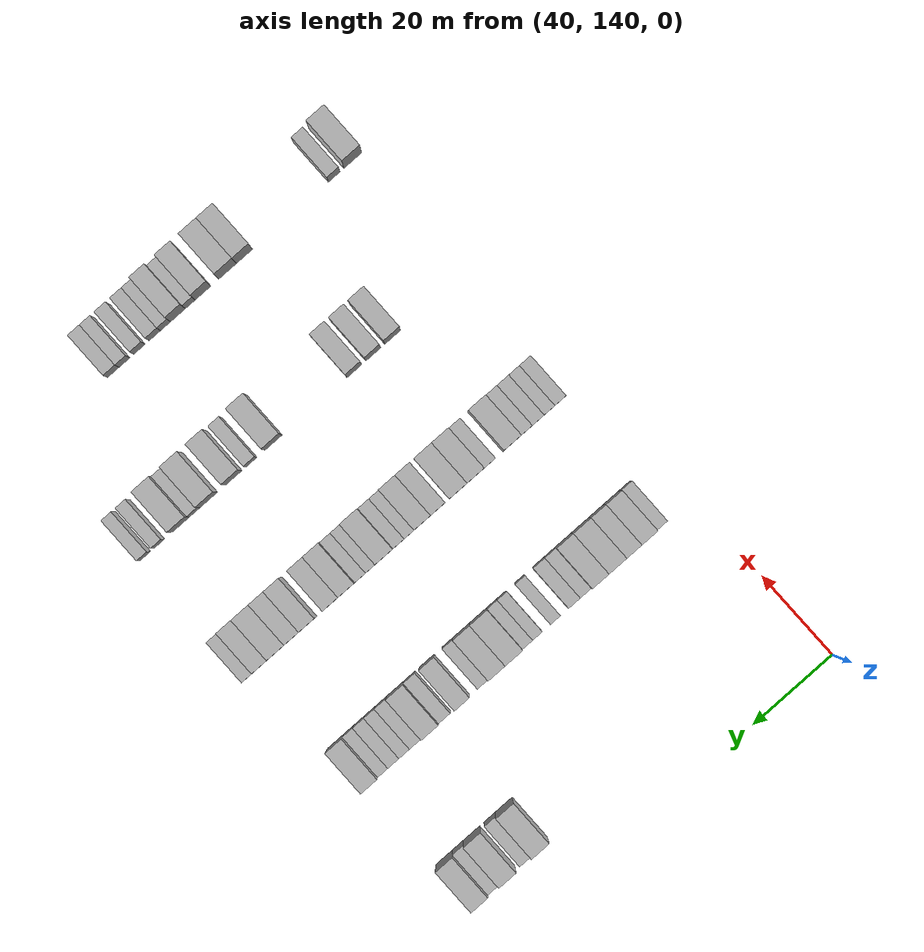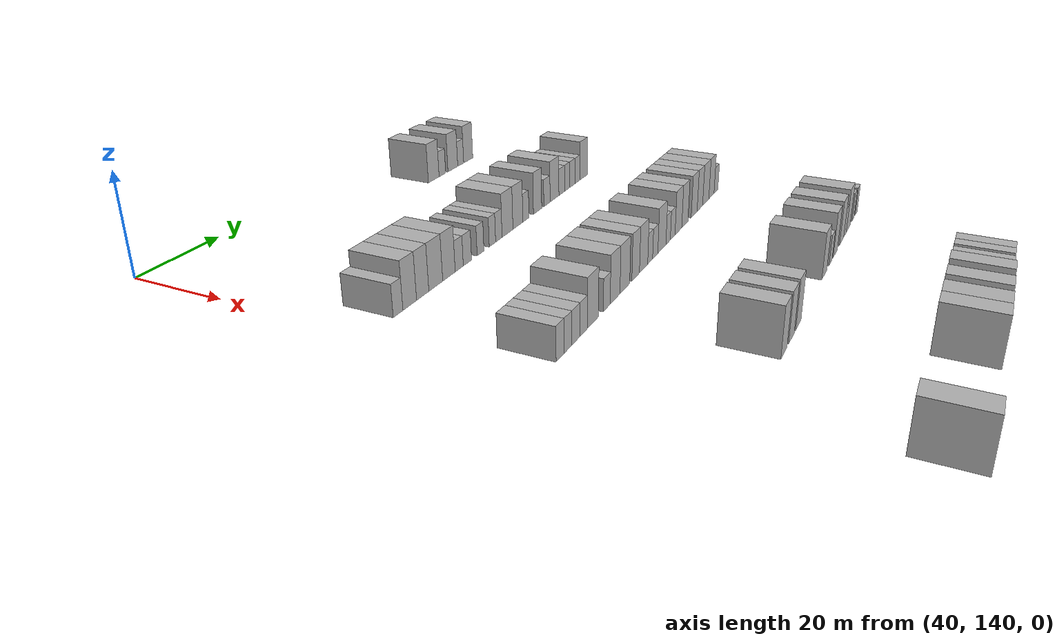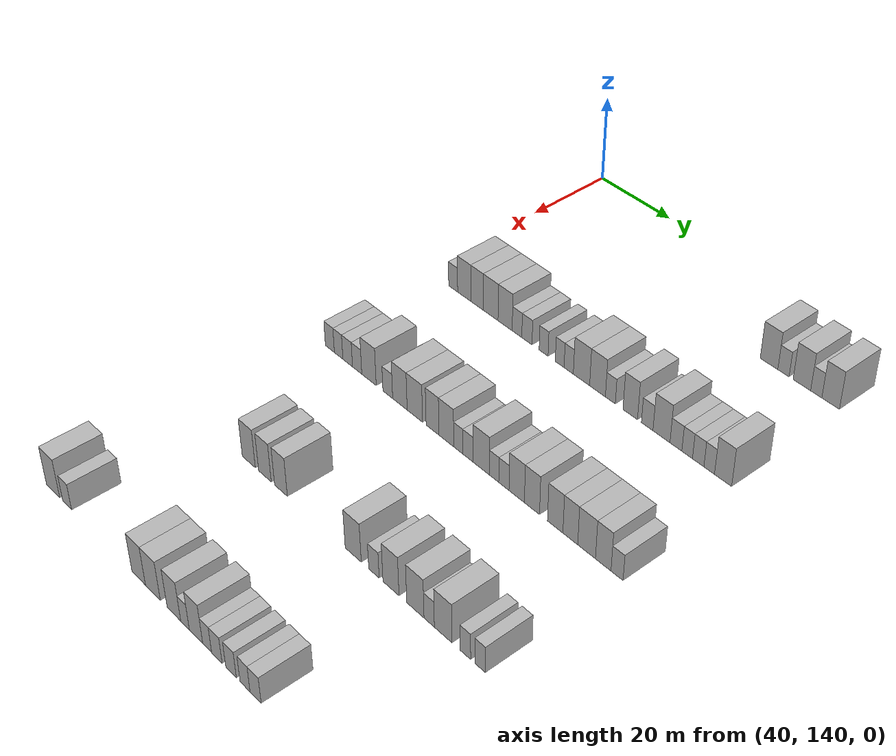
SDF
<sdf version="1.6">
 <world name="default">
  <model name="building_392">
   <static>1</static>
   <pose>55.0000 205.2667 0 0.000000 0.000000 0.000000</pose>
   <link name="link">
    <pose>0 0 4.50 0 0 0</pose>
    <collision name="collision"><geometry><box><size>10.0000 4.4121 9.0000</size></box></geometry></collision>
    <visual name="visual">
     <cast_shadows>0</cast_shadows>
     <geometry><box><size>10.0000 4.4121 9.0000</size></box></geometry>
     <material>
      <script>
       <uri>model://HANNAS_wall/materials/scripts</uri>
       <uri>model://HANNAS_wall/materials/textures</uri>
       <name>vrc/HANNAS_wall</name>
      </script>
     </material>
    </visual>
   </link>
  </model>
  <model name="building_393">
   <static>1</static>
   <pose>55.0000 208.8619 0 0.000000 0.000000 0.000000</pose>
   <link name="link">
    <pose>0 0 3.00 0 0 0</pose>
    <collision name="collision"><geometry><box><size>10.0000 2.7782 6.0000</size></box></geometry></collision>
    <visual name="visual">
     <cast_shadows>0</cast_shadows>
     <geometry><box><size>10.0000 2.7782 6.0000</size></box></geometry>
     <material>
      <script>
       <uri>model://HANNAS_wall/materials/scripts</uri>
       <uri>model://HANNAS_wall/materials/textures</uri>
       <name>vrc/HANNAS_wall</name>
      </script>
     </material>
    </visual>
   </link>
  </model>
  <model name="building_394">
   <static>1</static>
   <pose>55.0000 213.3897 0 0.000000 0.000000 0.000000</pose>
   <link name="link">
    <pose>0 0 4.50 0 0 0</pose>
    <collision name="collision"><geometry><box><size>10.0000 4.2774 9.0000</size></box></geometry></collision>
    <visual name="visual">
     <cast_shadows>0</cast_shadows>
     <geometry><box><size>10.0000 4.2774 9.0000</size></box></geometry>
     <material>
      <script>
       <uri>model://HANNAS_wall/materials/scripts</uri>
       <uri>model://HANNAS_wall/materials/textures</uri>
       <name>vrc/HANNAS_wall</name>
      </script>
     </material>
    </visual>
   </link>
  </model>
  <model name="building_395">
   <static>1</static>
   <pose>55.0000 216.8730 0 0.000000 0.000000 0.000000</pose>
   <link name="link">
    <pose>0 0 3.00 0 0 0</pose>
    <collision name="collision"><geometry><box><size>10.0000 2.6892 6.0000</size></box></geometry></collision>
    <visual name="visual">
     <cast_shadows>0</cast_shadows>
     <geometry><box><size>10.0000 2.6892 6.0000</size></box></geometry>
     <material>
      <script>
       <uri>model://HANNAS_wall/materials/scripts</uri>
       <uri>model://HANNAS_wall/materials/textures</uri>
       <name>vrc/HANNAS_wall</name>
      </script>
     </material>
    </visual>
   </link>
  </model>
  <model name="building_396">
   <static>1</static>
   <pose>55.0000 220.3134 0 0.000000 0.000000 0.000000</pose>
   <link name="link">
    <pose>0 0 4.50 0 0 0</pose>
    <collision name="collision"><geometry><box><size>10.0000 4.1917 9.0000</size></box></geometry></collision>
    <visual name="visual">
     <cast_shadows>0</cast_shadows>
     <geometry><box><size>10.0000 4.1917 9.0000</size></box></geometry>
     <material>
      <script>
       <uri>model://HANNAS_wall/materials/scripts</uri>
       <uri>model://HANNAS_wall/materials/textures</uri>
       <name>vrc/HANNAS_wall</name>
      </script>
     </material>
    </visual>
   </link>
  </model>
  <model name="building_612">
   <static>1</static>
   <pose>85.0000 148.2744 0 0.000000 0.000000 0.000000</pose>
   <link name="link">
    <pose>0 0 3.00 0 0 0</pose>
    <collision name="collision"><geometry><box><size>10.0000 2.7299 6.0000</size></box></geometry></collision>
    <visual name="visual">
     <cast_shadows>0</cast_shadows>
     <geometry><box><size>10.0000 2.7299 6.0000</size></box></geometry>
     <material>
      <script>
       <uri>model://HANNAS_wall/materials/scripts</uri>
       <uri>model://HANNAS_wall/materials/textures</uri>
       <name>vrc/HANNAS_wall</name>
      </script>
     </material>
    </visual>
   </link>
  </model>
  <model name="building_613">
   <static>1</static>
   <pose>85.0000 151.6302 0 0.000000 0.000000 0.000000</pose>
   <link name="link">
    <pose>0 0 4.50 0 0 0</pose>
    <collision name="collision"><geometry><box><size>10.0000 3.9817 9.0000</size></box></geometry></collision>
    <visual name="visual">
     <cast_shadows>0</cast_shadows>
     <geometry><box><size>10.0000 3.9817 9.0000</size></box></geometry>
     <material>
      <script>
       <uri>model://HANNAS_wall/materials/scripts</uri>
       <uri>model://HANNAS_wall/materials/textures</uri>
       <name>vrc/HANNAS_wall</name>
      </script>
     </material>
    </visual>
   </link>
  </model>
  <model name="building_614">
   <static>1</static>
   <pose>85.0000 155.4767 0 0.000000 0.000000 0.000000</pose>
   <link name="link">
    <pose>0 0 4.50 0 0 0</pose>
    <collision name="collision"><geometry><box><size>10.0000 3.7112 9.0000</size></box></geometry></collision>
    <visual name="visual">
     <cast_shadows>0</cast_shadows>
     <geometry><box><size>10.0000 3.7112 9.0000</size></box></geometry>
     <material>
      <script>
       <uri>model://HANNAS_wall/materials/scripts</uri>
       <uri>model://HANNAS_wall/materials/textures</uri>
       <name>vrc/HANNAS_wall</name>
      </script>
     </material>
    </visual>
   </link>
  </model>
  <model name="building_615">
   <static>1</static>
   <pose>85.0000 159.5320 0 0.000000 0.000000 0.000000</pose>
   <link name="link">
    <pose>0 0 4.50 0 0 0</pose>
    <collision name="collision"><geometry><box><size>10.0000 4.3995 9.0000</size></box></geometry></collision>
    <visual name="visual">
     <cast_shadows>0</cast_shadows>
     <geometry><box><size>10.0000 4.3995 9.0000</size></box></geometry>
     <material>
      <script>
       <uri>model://HANNAS_wall/materials/scripts</uri>
       <uri>model://HANNAS_wall/materials/textures</uri>
       <name>vrc/HANNAS_wall</name>
      </script>
     </material>
    </visual>
   </link>
  </model>
  <model name="building_616">
   <static>1</static>
   <pose>85.0000 163.7960 0 0.000000 0.000000 0.000000</pose>
   <link name="link">
    <pose>0 0 4.50 0 0 0</pose>
    <collision name="collision"><geometry><box><size>10.0000 4.1285 9.0000</size></box></geometry></collision>
    <visual name="visual">
     <cast_shadows>0</cast_shadows>
     <geometry><box><size>10.0000 4.1285 9.0000</size></box></geometry>
     <material>
      <script>
       <uri>model://HANNAS_wall/materials/scripts</uri>
       <uri>model://HANNAS_wall/materials/textures</uri>
       <name>vrc/HANNAS_wall</name>
      </script>
     </material>
    </visual>
   </link>
  </model>
  <model name="building_617">
   <static>1</static>
   <pose>85.0000 167.2426 0 0.000000 0.000000 0.000000</pose>
   <link name="link">
    <pose>0 0 3.00 0 0 0</pose>
    <collision name="collision"><geometry><box><size>10.0000 2.7646 6.0000</size></box></geometry></collision>
    <visual name="visual">
     <cast_shadows>0</cast_shadows>
     <geometry><box><size>10.0000 2.7646 6.0000</size></box></geometry>
     <material>
      <script>
       <uri>model://HANNAS_wall/materials/scripts</uri>
       <uri>model://HANNAS_wall/materials/textures</uri>
       <name>vrc/HANNAS_wall</name>
      </script>
     </material>
    </visual>
   </link>
  </model>
  <model name="building_618">
   <static>1</static>
   <pose>85.0000 170.0803 0 0.000000 0.000000 0.000000</pose>
   <link name="link">
    <pose>0 0 3.00 0 0 0</pose>
    <collision name="collision"><geometry><box><size>10.0000 2.9108 6.0000</size></box></geometry></collision>
    <visual name="visual">
     <cast_shadows>0</cast_shadows>
     <geometry><box><size>10.0000 2.9108 6.0000</size></box></geometry>
     <material>
      <script>
       <uri>model://HANNAS_wall/materials/scripts</uri>
       <uri>model://HANNAS_wall/materials/textures</uri>
       <name>vrc/HANNAS_wall</name>
      </script>
     </material>
    </visual>
   </link>
  </model>
  <model name="building_619">
   <static>1</static>
   <pose>85.0000 174.7910 0 0.000000 0.000000 0.000000</pose>
   <link name="link">
    <pose>0 0 3.00 0 0 0</pose>
    <collision name="collision"><geometry><box><size>10.0000 2.5106 6.0000</size></box></geometry></collision>
    <visual name="visual">
     <cast_shadows>0</cast_shadows>
     <geometry><box><size>10.0000 2.5106 6.0000</size></box></geometry>
     <material>
      <script>
       <uri>model://HANNAS_wall/materials/scripts</uri>
       <uri>model://HANNAS_wall/materials/textures</uri>
       <name>vrc/HANNAS_wall</name>
      </script>
     </material>
    </visual>
   </link>
  </model>
  <model name="building_620">
   <static>1</static>
   <pose>85.0000 179.2622 0 0.000000 0.000000 0.000000</pose>
   <link name="link">
    <pose>0 0 3.00 0 0 0</pose>
    <collision name="collision"><geometry><box><size>10.0000 2.4319 6.0000</size></box></geometry></collision>
    <visual name="visual">
     <cast_shadows>0</cast_shadows>
     <geometry><box><size>10.0000 2.4319 6.0000</size></box></geometry>
     <material>
      <script>
       <uri>model://HANNAS_wall/materials/scripts</uri>
       <uri>model://HANNAS_wall/materials/textures</uri>
       <name>vrc/HANNAS_wall</name>
      </script>
     </material>
    </visual>
   </link>
  </model>
  <model name="building_621">
   <static>1</static>
   <pose>85.0000 181.7440 0 0.000000 0.000000 0.000000</pose>
   <link name="link">
    <pose>0 0 3.00 0 0 0</pose>
    <collision name="collision"><geometry><box><size>10.0000 2.5317 6.0000</size></box></geometry></collision>
    <visual name="visual">
     <cast_shadows>0</cast_shadows>
     <geometry><box><size>10.0000 2.5317 6.0000</size></box></geometry>
     <material>
      <script>
       <uri>model://HANNAS_wall/materials/scripts</uri>
       <uri>model://HANNAS_wall/materials/textures</uri>
       <name>vrc/HANNAS_wall</name>
      </script>
     </material>
    </visual>
   </link>
  </model>
  <model name="building_622">
   <static>1</static>
   <pose>85.0000 185.2139 0 0.000000 0.000000 0.000000</pose>
   <link name="link">
    <pose>0 0 4.50 0 0 0</pose>
    <collision name="collision"><geometry><box><size>10.0000 4.4080 9.0000</size></box></geometry></collision>
    <visual name="visual">
     <cast_shadows>0</cast_shadows>
     <geometry><box><size>10.0000 4.4080 9.0000</size></box></geometry>
     <material>
      <script>
       <uri>model://HANNAS_wall/materials/scripts</uri>
       <uri>model://HANNAS_wall/materials/textures</uri>
       <name>vrc/HANNAS_wall</name>
      </script>
     </material>
    </visual>
   </link>
  </model>
  <model name="building_623">
   <static>1</static>
   <pose>85.0000 189.5163 0 0.000000 0.000000 0.000000</pose>
   <link name="link">
    <pose>0 0 4.50 0 0 0</pose>
    <collision name="collision"><geometry><box><size>10.0000 4.1970 9.0000</size></box></geometry></collision>
    <visual name="visual">
     <cast_shadows>0</cast_shadows>
     <geometry><box><size>10.0000 4.1970 9.0000</size></box></geometry>
     <material>
      <script>
       <uri>model://HANNAS_wall/materials/scripts</uri>
       <uri>model://HANNAS_wall/materials/textures</uri>
       <name>vrc/HANNAS_wall</name>
      </script>
     </material>
    </visual>
   </link>
  </model>
  <model name="building_624">
   <static>1</static>
   <pose>85.0000 192.9185 0 0.000000 0.000000 0.000000</pose>
   <link name="link">
    <pose>0 0 3.00 0 0 0</pose>
    <collision name="collision"><geometry><box><size>10.0000 2.6074 6.0000</size></box></geometry></collision>
    <visual name="visual">
     <cast_shadows>0</cast_shadows>
     <geometry><box><size>10.0000 2.6074 6.0000</size></box></geometry>
     <material>
      <script>
       <uri>model://HANNAS_wall/materials/scripts</uri>
       <uri>model://HANNAS_wall/materials/textures</uri>
       <name>vrc/HANNAS_wall</name>
      </script>
     </material>
    </visual>
   </link>
  </model>
  <model name="building_625">
   <static>1</static>
   <pose>85.0000 198.0983 0 0.000000 0.000000 0.000000</pose>
   <link name="link">
    <pose>0 0 4.50 0 0 0</pose>
    <collision name="collision"><geometry><box><size>10.0000 3.7522 9.0000</size></box></geometry></collision>
    <visual name="visual">
     <cast_shadows>0</cast_shadows>
     <geometry><box><size>10.0000 3.7522 9.0000</size></box></geometry>
     <material>
      <script>
       <uri>model://HANNAS_wall/materials/scripts</uri>
       <uri>model://HANNAS_wall/materials/textures</uri>
       <name>vrc/HANNAS_wall</name>
      </script>
     </material>
    </visual>
   </link>
  </model>
  <model name="building_626">
   <static>1</static>
   <pose>85.0000 202.4432 0 0.000000 0.000000 0.000000</pose>
   <link name="link">
    <pose>0 0 3.00 0 0 0</pose>
    <collision name="collision"><geometry><box><size>10.0000 2.9375 6.0000</size></box></geometry></collision>
    <visual name="visual">
     <cast_shadows>0</cast_shadows>
     <geometry><box><size>10.0000 2.9375 6.0000</size></box></geometry>
     <material>
      <script>
       <uri>model://HANNAS_wall/materials/scripts</uri>
       <uri>model://HANNAS_wall/materials/textures</uri>
       <name>vrc/HANNAS_wall</name>
      </script>
     </material>
    </visual>
   </link>
  </model>
  <model name="building_627">
   <static>1</static>
   <pose>85.0000 206.0453 0 0.000000 0.000000 0.000000</pose>
   <link name="link">
    <pose>0 0 4.50 0 0 0</pose>
    <collision name="collision"><geometry><box><size>10.0000 4.2667 9.0000</size></box></geometry></collision>
    <visual name="visual">
     <cast_shadows>0</cast_shadows>
     <geometry><box><size>10.0000 4.2667 9.0000</size></box></geometry>
     <material>
      <script>
       <uri>model://HANNAS_wall/materials/scripts</uri>
       <uri>model://HANNAS_wall/materials/textures</uri>
       <name>vrc/HANNAS_wall</name>
      </script>
     </material>
    </visual>
   </link>
  </model>
  <model name="building_628">
   <static>1</static>
   <pose>85.0000 209.6467 0 0.000000 0.000000 0.000000</pose>
   <link name="link">
    <pose>0 0 3.00 0 0 0</pose>
    <collision name="collision"><geometry><box><size>10.0000 2.9363 6.0000</size></box></geometry></collision>
    <visual name="visual">
     <cast_shadows>0</cast_shadows>
     <geometry><box><size>10.0000 2.9363 6.0000</size></box></geometry>
     <material>
      <script>
       <uri>model://HANNAS_wall/materials/scripts</uri>
       <uri>model://HANNAS_wall/materials/textures</uri>
       <name>vrc/HANNAS_wall</name>
      </script>
     </material>
    </visual>
   </link>
  </model>
  <model name="building_629">
   <static>1</static>
   <pose>85.0000 212.4178 0 0.000000 0.000000 0.000000</pose>
   <link name="link">
    <pose>0 0 3.00 0 0 0</pose>
    <collision name="collision"><geometry><box><size>10.0000 2.6058 6.0000</size></box></geometry></collision>
    <visual name="visual">
     <cast_shadows>0</cast_shadows>
     <geometry><box><size>10.0000 2.6058 6.0000</size></box></geometry>
     <material>
      <script>
       <uri>model://HANNAS_wall/materials/scripts</uri>
       <uri>model://HANNAS_wall/materials/textures</uri>
       <name>vrc/HANNAS_wall</name>
      </script>
     </material>
    </visual>
   </link>
  </model>
  <model name="building_630">
   <static>1</static>
   <pose>85.0000 215.1076 0 0.000000 0.000000 0.000000</pose>
   <link name="link">
    <pose>0 0 3.00 0 0 0</pose>
    <collision name="collision"><geometry><box><size>10.0000 2.7737 6.0000</size></box></geometry></collision>
    <visual name="visual">
     <cast_shadows>0</cast_shadows>
     <geometry><box><size>10.0000 2.7737 6.0000</size></box></geometry>
     <material>
      <script>
       <uri>model://HANNAS_wall/materials/scripts</uri>
       <uri>model://HANNAS_wall/materials/textures</uri>
       <name>vrc/HANNAS_wall</name>
      </script>
     </material>
    </visual>
   </link>
  </model>
  <model name="building_631">
   <static>1</static>
   <pose>85.0000 217.7682 0 0.000000 0.000000 0.000000</pose>
   <link name="link">
    <pose>0 0 3.00 0 0 0</pose>
    <collision name="collision"><geometry><box><size>10.0000 2.5476 6.0000</size></box></geometry></collision>
    <visual name="visual">
     <cast_shadows>0</cast_shadows>
     <geometry><box><size>10.0000 2.5476 6.0000</size></box></geometry>
     <material>
      <script>
       <uri>model://HANNAS_wall/materials/scripts</uri>
       <uri>model://HANNAS_wall/materials/textures</uri>
       <name>vrc/HANNAS_wall</name>
      </script>
     </material>
    </visual>
   </link>
  </model>
  <model name="building_632">
   <static>1</static>
   <pose>85.0000 221.0757 0 0.000000 0.000000 0.000000</pose>
   <link name="link">
    <pose>0 0 4.50 0 0 0</pose>
    <collision name="collision"><geometry><box><size>10.0000 4.0674 9.0000</size></box></geometry></collision>
    <visual name="visual">
     <cast_shadows>0</cast_shadows>
     <geometry><box><size>10.0000 4.0674 9.0000</size></box></geometry>
     <material>
      <script>
       <uri>model://HANNAS_wall/materials/scripts</uri>
       <uri>model://HANNAS_wall/materials/textures</uri>
       <name>vrc/HANNAS_wall</name>
      </script>
     </material>
    </visual>
   </link>
  </model>
  <model name="building_844">
   <static>1</static>
   <pose>115.0000 146.9873 0 0.000000 0.000000 0.000000</pose>
   <link name="link">
    <pose>0 0 3.00 0 0 0</pose>
    <collision name="collision"><geometry><box><size>10.0000 2.8146 6.0000</size></box></geometry></collision>
    <visual name="visual">
     <cast_shadows>0</cast_shadows>
     <geometry><box><size>10.0000 2.8146 6.0000</size></box></geometry>
     <material>
      <script>
       <uri>model://HANNAS_wall/materials/scripts</uri>
       <uri>model://HANNAS_wall/materials/textures</uri>
       <name>vrc/HANNAS_wall</name>
      </script>
     </material>
    </visual>
   </link>
  </model>
  <model name="building_845">
   <static>1</static>
   <pose>115.0000 149.7172 0 0.000000 0.000000 0.000000</pose>
   <link name="link">
    <pose>0 0 3.00 0 0 0</pose>
    <collision name="collision"><geometry><box><size>10.0000 2.6453 6.0000</size></box></geometry></collision>
    <visual name="visual">
     <cast_shadows>0</cast_shadows>
     <geometry><box><size>10.0000 2.6453 6.0000</size></box></geometry>
     <material>
      <script>
       <uri>model://HANNAS_wall/materials/scripts</uri>
       <uri>model://HANNAS_wall/materials/textures</uri>
       <name>vrc/HANNAS_wall</name>
      </script>
     </material>
    </visual>
   </link>
  </model>
  <model name="building_846">
   <static>1</static>
   <pose>115.0000 152.5120 0 0.000000 0.000000 0.000000</pose>
   <link name="link">
    <pose>0 0 3.00 0 0 0</pose>
    <collision name="collision"><geometry><box><size>10.0000 2.9444 6.0000</size></box></geometry></collision>
    <visual name="visual">
     <cast_shadows>0</cast_shadows>
     <geometry><box><size>10.0000 2.9444 6.0000</size></box></geometry>
     <material>
      <script>
       <uri>model://HANNAS_wall/materials/scripts</uri>
       <uri>model://HANNAS_wall/materials/textures</uri>
       <name>vrc/HANNAS_wall</name>
      </script>
     </material>
    </visual>
   </link>
  </model>
  <model name="building_847">
   <static>1</static>
   <pose>115.0000 155.3981 0 0.000000 0.000000 0.000000</pose>
   <link name="link">
    <pose>0 0 3.00 0 0 0</pose>
    <collision name="collision"><geometry><box><size>10.0000 2.8277 6.0000</size></box></geometry></collision>
    <visual name="visual">
     <cast_shadows>0</cast_shadows>
     <geometry><box><size>10.0000 2.8277 6.0000</size></box></geometry>
     <material>
      <script>
       <uri>model://HANNAS_wall/materials/scripts</uri>
       <uri>model://HANNAS_wall/materials/textures</uri>
       <name>vrc/HANNAS_wall</name>
      </script>
     </material>
    </visual>
   </link>
  </model>
  <model name="building_848">
   <static>1</static>
   <pose>115.0000 158.9808 0 0.000000 0.000000 0.000000</pose>
   <link name="link">
    <pose>0 0 4.50 0 0 0</pose>
    <collision name="collision"><geometry><box><size>10.0000 4.3377 9.0000</size></box></geometry></collision>
    <visual name="visual">
     <cast_shadows>0</cast_shadows>
     <geometry><box><size>10.0000 4.3377 9.0000</size></box></geometry>
     <material>
      <script>
       <uri>model://HANNAS_wall/materials/scripts</uri>
       <uri>model://HANNAS_wall/materials/textures</uri>
       <name>vrc/HANNAS_wall</name>
      </script>
     </material>
    </visual>
   </link>
  </model>
  <model name="building_849">
   <static>1</static>
   <pose>115.0000 164.5821 0 0.000000 0.000000 0.000000</pose>
   <link name="link">
    <pose>0 0 3.00 0 0 0</pose>
    <collision name="collision"><geometry><box><size>10.0000 2.8649 6.0000</size></box></geometry></collision>
    <visual name="visual">
     <cast_shadows>0</cast_shadows>
     <geometry><box><size>10.0000 2.8649 6.0000</size></box></geometry>
     <material>
      <script>
       <uri>model://HANNAS_wall/materials/scripts</uri>
       <uri>model://HANNAS_wall/materials/textures</uri>
       <name>vrc/HANNAS_wall</name>
      </script>
     </material>
    </visual>
   </link>
  </model>
  <model name="building_850">
   <static>1</static>
   <pose>115.0000 168.1285 0 0.000000 0.000000 0.000000</pose>
   <link name="link">
    <pose>0 0 4.50 0 0 0</pose>
    <collision name="collision"><geometry><box><size>10.0000 4.2279 9.0000</size></box></geometry></collision>
    <visual name="visual">
     <cast_shadows>0</cast_shadows>
     <geometry><box><size>10.0000 4.2279 9.0000</size></box></geometry>
     <material>
      <script>
       <uri>model://HANNAS_wall/materials/scripts</uri>
       <uri>model://HANNAS_wall/materials/textures</uri>
       <name>vrc/HANNAS_wall</name>
      </script>
     </material>
    </visual>
   </link>
  </model>
  <model name="building_851">
   <static>1</static>
   <pose>115.0000 172.4520 0 0.000000 0.000000 0.000000</pose>
   <link name="link">
    <pose>0 0 4.50 0 0 0</pose>
    <collision name="collision"><geometry><box><size>10.0000 4.4190 9.0000</size></box></geometry></collision>
    <visual name="visual">
     <cast_shadows>0</cast_shadows>
     <geometry><box><size>10.0000 4.4190 9.0000</size></box></geometry>
     <material>
      <script>
       <uri>model://HANNAS_wall/materials/scripts</uri>
       <uri>model://HANNAS_wall/materials/textures</uri>
       <name>vrc/HANNAS_wall</name>
      </script>
     </material>
    </visual>
   </link>
  </model>
  <model name="building_852">
   <static>1</static>
   <pose>115.0000 177.4724 0 0.000000 0.000000 0.000000</pose>
   <link name="link">
    <pose>0 0 4.50 0 0 0</pose>
    <collision name="collision"><geometry><box><size>10.0000 3.6219 9.0000</size></box></geometry></collision>
    <visual name="visual">
     <cast_shadows>0</cast_shadows>
     <geometry><box><size>10.0000 3.6219 9.0000</size></box></geometry>
     <material>
      <script>
       <uri>model://HANNAS_wall/materials/scripts</uri>
       <uri>model://HANNAS_wall/materials/textures</uri>
       <name>vrc/HANNAS_wall</name>
      </script>
     </material>
    </visual>
   </link>
  </model>
  <model name="building_853">
   <static>1</static>
   <pose>115.0000 181.3323 0 0.000000 0.000000 0.000000</pose>
   <link name="link">
    <pose>0 0 4.50 0 0 0</pose>
    <collision name="collision"><geometry><box><size>10.0000 4.0980 9.0000</size></box></geometry></collision>
    <visual name="visual">
     <cast_shadows>0</cast_shadows>
     <geometry><box><size>10.0000 4.0980 9.0000</size></box></geometry>
     <material>
      <script>
       <uri>model://HANNAS_wall/materials/scripts</uri>
       <uri>model://HANNAS_wall/materials/textures</uri>
       <name>vrc/HANNAS_wall</name>
      </script>
     </material>
    </visual>
   </link>
  </model>
  <model name="building_854">
   <static>1</static>
   <pose>115.0000 184.6304 0 0.000000 0.000000 0.000000</pose>
   <link name="link">
    <pose>0 0 3.00 0 0 0</pose>
    <collision name="collision"><geometry><box><size>10.0000 2.4981 6.0000</size></box></geometry></collision>
    <visual name="visual">
     <cast_shadows>0</cast_shadows>
     <geometry><box><size>10.0000 2.4981 6.0000</size></box></geometry>
     <material>
      <script>
       <uri>model://HANNAS_wall/materials/scripts</uri>
       <uri>model://HANNAS_wall/materials/textures</uri>
       <name>vrc/HANNAS_wall</name>
      </script>
     </material>
    </visual>
   </link>
  </model>
  <model name="building_855">
   <static>1</static>
   <pose>115.0000 187.2639 0 0.000000 0.000000 0.000000</pose>
   <link name="link">
    <pose>0 0 3.00 0 0 0</pose>
    <collision name="collision"><geometry><box><size>10.0000 2.7690 6.0000</size></box></geometry></collision>
    <visual name="visual">
     <cast_shadows>0</cast_shadows>
     <geometry><box><size>10.0000 2.7690 6.0000</size></box></geometry>
     <material>
      <script>
       <uri>model://HANNAS_wall/materials/scripts</uri>
       <uri>model://HANNAS_wall/materials/textures</uri>
       <name>vrc/HANNAS_wall</name>
      </script>
     </material>
    </visual>
   </link>
  </model>
  <model name="building_856">
   <static>1</static>
   <pose>115.0000 190.8402 0 0.000000 0.000000 0.000000</pose>
   <link name="link">
    <pose>0 0 4.50 0 0 0</pose>
    <collision name="collision"><geometry><box><size>10.0000 4.3836 9.0000</size></box></geometry></collision>
    <visual name="visual">
     <cast_shadows>0</cast_shadows>
     <geometry><box><size>10.0000 4.3836 9.0000</size></box></geometry>
     <material>
      <script>
       <uri>model://HANNAS_wall/materials/scripts</uri>
       <uri>model://HANNAS_wall/materials/textures</uri>
       <name>vrc/HANNAS_wall</name>
      </script>
     </material>
    </visual>
   </link>
  </model>
  <model name="building_857">
   <static>1</static>
   <pose>115.0000 194.2696 0 0.000000 0.000000 0.000000</pose>
   <link name="link">
    <pose>0 0 3.00 0 0 0</pose>
    <collision name="collision"><geometry><box><size>10.0000 2.4751 6.0000</size></box></geometry></collision>
    <visual name="visual">
     <cast_shadows>0</cast_shadows>
     <geometry><box><size>10.0000 2.4751 6.0000</size></box></geometry>
     <material>
      <script>
       <uri>model://HANNAS_wall/materials/scripts</uri>
       <uri>model://HANNAS_wall/materials/textures</uri>
       <name>vrc/HANNAS_wall</name>
      </script>
     </material>
    </visual>
   </link>
  </model>
  <model name="building_858">
   <static>1</static>
   <pose>115.0000 196.8549 0 0.000000 0.000000 0.000000</pose>
   <link name="link">
    <pose>0 0 3.00 0 0 0</pose>
    <collision name="collision"><geometry><box><size>10.0000 2.6957 6.0000</size></box></geometry></collision>
    <visual name="visual">
     <cast_shadows>0</cast_shadows>
     <geometry><box><size>10.0000 2.6957 6.0000</size></box></geometry>
     <material>
      <script>
       <uri>model://HANNAS_wall/materials/scripts</uri>
       <uri>model://HANNAS_wall/materials/textures</uri>
       <name>vrc/HANNAS_wall</name>
      </script>
     </material>
    </visual>
   </link>
  </model>
  <model name="building_859">
   <static>1</static>
   <pose>115.0000 200.1905 0 0.000000 0.000000 0.000000</pose>
   <link name="link">
    <pose>0 0 4.50 0 0 0</pose>
    <collision name="collision"><geometry><box><size>10.0000 3.9754 9.0000</size></box></geometry></collision>
    <visual name="visual">
     <cast_shadows>0</cast_shadows>
     <geometry><box><size>10.0000 3.9754 9.0000</size></box></geometry>
     <material>
      <script>
       <uri>model://HANNAS_wall/materials/scripts</uri>
       <uri>model://HANNAS_wall/materials/textures</uri>
       <name>vrc/HANNAS_wall</name>
      </script>
     </material>
    </visual>
   </link>
  </model>
  <model name="building_860">
   <static>1</static>
   <pose>115.0000 204.1039 0 0.000000 0.000000 0.000000</pose>
   <link name="link">
    <pose>0 0 4.50 0 0 0</pose>
    <collision name="collision"><geometry><box><size>10.0000 3.8515 9.0000</size></box></geometry></collision>
    <visual name="visual">
     <cast_shadows>0</cast_shadows>
     <geometry><box><size>10.0000 3.8515 9.0000</size></box></geometry>
     <material>
      <script>
       <uri>model://HANNAS_wall/materials/scripts</uri>
       <uri>model://HANNAS_wall/materials/textures</uri>
       <name>vrc/HANNAS_wall</name>
      </script>
     </material>
    </visual>
   </link>
  </model>
  <model name="building_861">
   <static>1</static>
   <pose>115.0000 209.9508 0 0.000000 0.000000 0.000000</pose>
   <link name="link">
    <pose>0 0 4.50 0 0 0</pose>
    <collision name="collision"><geometry><box><size>10.0000 3.8422 9.0000</size></box></geometry></collision>
    <visual name="visual">
     <cast_shadows>0</cast_shadows>
     <geometry><box><size>10.0000 3.8422 9.0000</size></box></geometry>
     <material>
      <script>
       <uri>model://HANNAS_wall/materials/scripts</uri>
       <uri>model://HANNAS_wall/materials/textures</uri>
       <name>vrc/HANNAS_wall</name>
      </script>
     </material>
    </visual>
   </link>
  </model>
  <model name="building_862">
   <static>1</static>
   <pose>115.0000 213.6902 0 0.000000 0.000000 0.000000</pose>
   <link name="link">
    <pose>0 0 4.50 0 0 0</pose>
    <collision name="collision"><geometry><box><size>10.0000 3.6367 9.0000</size></box></geometry></collision>
    <visual name="visual">
     <cast_shadows>0</cast_shadows>
     <geometry><box><size>10.0000 3.6367 9.0000</size></box></geometry>
     <material>
      <script>
       <uri>model://HANNAS_wall/materials/scripts</uri>
       <uri>model://HANNAS_wall/materials/textures</uri>
       <name>vrc/HANNAS_wall</name>
      </script>
     </material>
    </visual>
   </link>
  </model>
  <model name="building_863">
   <static>1</static>
   <pose>115.0000 217.6540 0 0.000000 0.000000 0.000000</pose>
   <link name="link">
    <pose>0 0 4.50 0 0 0</pose>
    <collision name="collision"><geometry><box><size>10.0000 4.2908 9.0000</size></box></geometry></collision>
    <visual name="visual">
     <cast_shadows>0</cast_shadows>
     <geometry><box><size>10.0000 4.2908 9.0000</size></box></geometry>
     <material>
      <script>
       <uri>model://HANNAS_wall/materials/scripts</uri>
       <uri>model://HANNAS_wall/materials/textures</uri>
       <name>vrc/HANNAS_wall</name>
      </script>
     </material>
    </visual>
   </link>
  </model>
  <model name="building_864">
   <static>1</static>
   <pose>115.0000 221.6485 0 0.000000 0.000000 0.000000</pose>
   <link name="link">
    <pose>0 0 4.50 0 0 0</pose>
    <collision name="collision"><geometry><box><size>10.0000 3.6982 9.0000</size></box></geometry></collision>
    <visual name="visual">
     <cast_shadows>0</cast_shadows>
     <geometry><box><size>10.0000 3.6982 9.0000</size></box></geometry>
     <material>
      <script>
       <uri>model://HANNAS_wall/materials/scripts</uri>
       <uri>model://HANNAS_wall/materials/textures</uri>
       <name>vrc/HANNAS_wall</name>
      </script>
     </material>
    </visual>
   </link>
  </model>
  <model name="building_865">
   <static>1</static>
   <pose>115.0000 224.9192 0 0.000000 0.000000 0.000000</pose>
   <link name="link">
    <pose>0 0 3.00 0 0 0</pose>
    <collision name="collision"><geometry><box><size>10.0000 2.8432 6.0000</size></box></geometry></collision>
    <visual name="visual">
     <cast_shadows>0</cast_shadows>
     <geometry><box><size>10.0000 2.8432 6.0000</size></box></geometry>
     <material>
      <script>
       <uri>model://HANNAS_wall/materials/scripts</uri>
       <uri>model://HANNAS_wall/materials/textures</uri>
       <name>vrc/HANNAS_wall</name>
      </script>
     </material>
    </visual>
   </link>
  </model>
  <model name="building_1068">
   <static>1</static>
   <pose>145.0000 162.4159 0 0.000000 0.000000 0.000000</pose>
   <link name="link">
    <pose>0 0 4.50 0 0 0</pose>
    <collision name="collision"><geometry><box><size>10.0000 3.9689 9.0000</size></box></geometry></collision>
    <visual name="visual">
     <cast_shadows>0</cast_shadows>
     <geometry><box><size>10.0000 3.9689 9.0000</size></box></geometry>
     <material>
      <script>
       <uri>model://HANNAS_wall/materials/scripts</uri>
       <uri>model://HANNAS_wall/materials/textures</uri>
       <name>vrc/HANNAS_wall</name>
      </script>
     </material>
    </visual>
   </link>
  </model>
  <model name="building_1069">
   <static>1</static>
   <pose>145.0000 167.2833 0 0.000000 0.000000 0.000000</pose>
   <link name="link">
    <pose>0 0 4.50 0 0 0</pose>
    <collision name="collision"><geometry><box><size>10.0000 3.7659 9.0000</size></box></geometry></collision>
    <visual name="visual">
     <cast_shadows>0</cast_shadows>
     <geometry><box><size>10.0000 3.7659 9.0000</size></box></geometry>
     <material>
      <script>
       <uri>model://HANNAS_wall/materials/scripts</uri>
       <uri>model://HANNAS_wall/materials/textures</uri>
       <name>vrc/HANNAS_wall</name>
      </script>
     </material>
    </visual>
   </link>
  </model>
  <model name="building_1070">
   <static>1</static>
   <pose>145.0000 172.0352 0 0.000000 0.000000 0.000000</pose>
   <link name="link">
    <pose>0 0 4.50 0 0 0</pose>
    <collision name="collision"><geometry><box><size>10.0000 3.7378 9.0000</size></box></geometry></collision>
    <visual name="visual">
     <cast_shadows>0</cast_shadows>
     <geometry><box><size>10.0000 3.7378 9.0000</size></box></geometry>
     <material>
      <script>
       <uri>model://HANNAS_wall/materials/scripts</uri>
       <uri>model://HANNAS_wall/materials/textures</uri>
       <name>vrc/HANNAS_wall</name>
      </script>
     </material>
    </visual>
   </link>
  </model>
  <model name="building_1071">
   <static>1</static>
   <pose>145.0000 192.4297 0 0.000000 0.000000 0.000000</pose>
   <link name="link">
    <pose>0 0 4.50 0 0 0</pose>
    <collision name="collision"><geometry><box><size>10.0000 4.3504 9.0000</size></box></geometry></collision>
    <visual name="visual">
     <cast_shadows>0</cast_shadows>
     <geometry><box><size>10.0000 4.3504 9.0000</size></box></geometry>
     <material>
      <script>
       <uri>model://HANNAS_wall/materials/scripts</uri>
       <uri>model://HANNAS_wall/materials/textures</uri>
       <name>vrc/HANNAS_wall</name>
      </script>
     </material>
    </visual>
   </link>
  </model>
  <model name="building_1072">
   <static>1</static>
   <pose>145.0000 197.9897 0 0.000000 0.000000 0.000000</pose>
   <link name="link">
    <pose>0 0 3.00 0 0 0</pose>
    <collision name="collision"><geometry><box><size>10.0000 2.7696 6.0000</size></box></geometry></collision>
    <visual name="visual">
     <cast_shadows>0</cast_shadows>
     <geometry><box><size>10.0000 2.7696 6.0000</size></box></geometry>
     <material>
      <script>
       <uri>model://HANNAS_wall/materials/scripts</uri>
       <uri>model://HANNAS_wall/materials/textures</uri>
       <name>vrc/HANNAS_wall</name>
      </script>
     </material>
    </visual>
   </link>
  </model>
  <model name="building_1073">
   <static>1</static>
   <pose>145.0000 202.4666 0 0.000000 0.000000 0.000000</pose>
   <link name="link">
    <pose>0 0 4.50 0 0 0</pose>
    <collision name="collision"><geometry><box><size>10.0000 4.1842 9.0000</size></box></geometry></collision>
    <visual name="visual">
     <cast_shadows>0</cast_shadows>
     <geometry><box><size>10.0000 4.1842 9.0000</size></box></geometry>
     <material>
      <script>
       <uri>model://HANNAS_wall/materials/scripts</uri>
       <uri>model://HANNAS_wall/materials/textures</uri>
       <name>vrc/HANNAS_wall</name>
      </script>
     </material>
    </visual>
   </link>
  </model>
  <model name="building_1074">
   <static>1</static>
   <pose>145.0000 208.7525 0 0.000000 0.000000 0.000000</pose>
   <link name="link">
    <pose>0 0 4.50 0 0 0</pose>
    <collision name="collision"><geometry><box><size>10.0000 4.3875 9.0000</size></box></geometry></collision>
    <visual name="visual">
     <cast_shadows>0</cast_shadows>
     <geometry><box><size>10.0000 4.3875 9.0000</size></box></geometry>
     <material>
      <script>
       <uri>model://HANNAS_wall/materials/scripts</uri>
       <uri>model://HANNAS_wall/materials/textures</uri>
       <name>vrc/HANNAS_wall</name>
      </script>
     </material>
    </visual>
   </link>
  </model>
  <model name="building_1075">
   <static>1</static>
   <pose>145.0000 212.2433 0 0.000000 0.000000 0.000000</pose>
   <link name="link">
    <pose>0 0 3.00 0 0 0</pose>
    <collision name="collision"><geometry><box><size>10.0000 2.5940 6.0000</size></box></geometry></collision>
    <visual name="visual">
     <cast_shadows>0</cast_shadows>
     <geometry><box><size>10.0000 2.5940 6.0000</size></box></geometry>
     <material>
      <script>
       <uri>model://HANNAS_wall/materials/scripts</uri>
       <uri>model://HANNAS_wall/materials/textures</uri>
       <name>vrc/HANNAS_wall</name>
      </script>
     </material>
    </visual>
   </link>
  </model>
  <model name="building_1076">
   <static>1</static>
   <pose>145.0000 215.7161 0 0.000000 0.000000 0.000000</pose>
   <link name="link">
    <pose>0 0 4.50 0 0 0</pose>
    <collision name="collision"><geometry><box><size>10.0000 4.3517 9.0000</size></box></geometry></collision>
    <visual name="visual">
     <cast_shadows>0</cast_shadows>
     <geometry><box><size>10.0000 4.3517 9.0000</size></box></geometry>
     <material>
      <script>
       <uri>model://HANNAS_wall/materials/scripts</uri>
       <uri>model://HANNAS_wall/materials/textures</uri>
       <name>vrc/HANNAS_wall</name>
      </script>
     </material>
    </visual>
   </link>
  </model>
  <model name="building_1077">
   <static>1</static>
   <pose>145.0000 221.1539 0 0.000000 0.000000 0.000000</pose>
   <link name="link">
    <pose>0 0 3.00 0 0 0</pose>
    <collision name="collision"><geometry><box><size>10.0000 2.5239 6.0000</size></box></geometry></collision>
    <visual name="visual">
     <cast_shadows>0</cast_shadows>
     <geometry><box><size>10.0000 2.5239 6.0000</size></box></geometry>
     <material>
      <script>
       <uri>model://HANNAS_wall/materials/scripts</uri>
       <uri>model://HANNAS_wall/materials/textures</uri>
       <name>vrc/HANNAS_wall</name>
      </script>
     </material>
    </visual>
   </link>
  </model>
  <model name="building_1078">
   <static>1</static>
   <pose>145.0000 224.6789 0 0.000000 0.000000 0.000000</pose>
   <link name="link">
    <pose>0 0 3.00 0 0 0</pose>
    <collision name="collision"><geometry><box><size>10.0000 2.5263 6.0000</size></box></geometry></collision>
    <visual name="visual">
     <cast_shadows>0</cast_shadows>
     <geometry><box><size>10.0000 2.5263 6.0000</size></box></geometry>
     <material>
      <script>
       <uri>model://HANNAS_wall/materials/scripts</uri>
       <uri>model://HANNAS_wall/materials/textures</uri>
       <name>vrc/HANNAS_wall</name>
      </script>
     </material>
    </visual>
   </link>
  </model>
  <model name="building_1290">
   <static>1</static>
   <pose>175.0000 145.9242 0 0.000000 0.000000 0.000000</pose>
   <link name="link">
    <pose>0 0 4.50 0 0 0</pose>
    <collision name="collision"><geometry><box><size>10.0000 4.4741 9.0000</size></box></geometry></collision>
    <visual name="visual">
     <cast_shadows>0</cast_shadows>
     <geometry><box><size>10.0000 4.4741 9.0000</size></box></geometry>
     <material>
      <script>
       <uri>model://HANNAS_wall/materials/scripts</uri>
       <uri>model://HANNAS_wall/materials/textures</uri>
       <name>vrc/HANNAS_wall</name>
      </script>
     </material>
    </visual>
   </link>
  </model>
  <model name="building_1291">
   <static>1</static>
   <pose>175.0000 150.6210 0 0.000000 0.000000 0.000000</pose>
   <link name="link">
    <pose>0 0 3.00 0 0 0</pose>
    <collision name="collision"><geometry><box><size>10.0000 2.9196 6.0000</size></box></geometry></collision>
    <visual name="visual">
     <cast_shadows>0</cast_shadows>
     <geometry><box><size>10.0000 2.9196 6.0000</size></box></geometry>
     <material>
      <script>
       <uri>model://HANNAS_wall/materials/scripts</uri>
       <uri>model://HANNAS_wall/materials/textures</uri>
       <name>vrc/HANNAS_wall</name>
      </script>
     </material>
    </visual>
   </link>
  </model>
  <model name="building_1292">
   <static>1</static>
   <pose>175.0000 173.2414 0 0.000000 0.000000 0.000000</pose>
   <link name="link">
    <pose>0 0 4.50 0 0 0</pose>
    <collision name="collision"><geometry><box><size>10.0000 4.1071 9.0000</size></box></geometry></collision>
    <visual name="visual">
     <cast_shadows>0</cast_shadows>
     <geometry><box><size>10.0000 4.1071 9.0000</size></box></geometry>
     <material>
      <script>
       <uri>model://HANNAS_wall/materials/scripts</uri>
       <uri>model://HANNAS_wall/materials/textures</uri>
       <name>vrc/HANNAS_wall</name>
      </script>
     </material>
    </visual>
   </link>
  </model>
  <model name="building_1293">
   <static>1</static>
   <pose>175.0000 177.4956 0 0.000000 0.000000 0.000000</pose>
   <link name="link">
    <pose>0 0 4.50 0 0 0</pose>
    <collision name="collision"><geometry><box><size>10.0000 4.4012 9.0000</size></box></geometry></collision>
    <visual name="visual">
     <cast_shadows>0</cast_shadows>
     <geometry><box><size>10.0000 4.4012 9.0000</size></box></geometry>
     <material>
      <script>
       <uri>model://HANNAS_wall/materials/scripts</uri>
       <uri>model://HANNAS_wall/materials/textures</uri>
       <name>vrc/HANNAS_wall</name>
      </script>
     </material>
    </visual>
   </link>
  </model>
  <model name="building_1294">
   <static>1</static>
   <pose>175.0000 183.6645 0 0.000000 0.000000 0.000000</pose>
   <link name="link">
    <pose>0 0 4.50 0 0 0</pose>
    <collision name="collision"><geometry><box><size>10.0000 3.9366 9.0000</size></box></geometry></collision>
    <visual name="visual">
     <cast_shadows>0</cast_shadows>
     <geometry><box><size>10.0000 3.9366 9.0000</size></box></geometry>
     <material>
      <script>
       <uri>model://HANNAS_wall/materials/scripts</uri>
       <uri>model://HANNAS_wall/materials/textures</uri>
       <name>vrc/HANNAS_wall</name>
      </script>
     </material>
    </visual>
   </link>
  </model>
  <model name="building_1295">
   <static>1</static>
   <pose>175.0000 186.8671 0 0.000000 0.000000 0.000000</pose>
   <link name="link">
    <pose>0 0 3.00 0 0 0</pose>
    <collision name="collision"><geometry><box><size>10.0000 2.4687 6.0000</size></box></geometry></collision>
    <visual name="visual">
     <cast_shadows>0</cast_shadows>
     <geometry><box><size>10.0000 2.4687 6.0000</size></box></geometry>
     <material>
      <script>
       <uri>model://HANNAS_wall/materials/scripts</uri>
       <uri>model://HANNAS_wall/materials/textures</uri>
       <name>vrc/HANNAS_wall</name>
      </script>
     </material>
    </visual>
   </link>
  </model>
  <model name="building_1296">
   <static>1</static>
   <pose>175.0000 189.9875 0 0.000000 0.000000 0.000000</pose>
   <link name="link">
    <pose>0 0 4.50 0 0 0</pose>
    <collision name="collision"><geometry><box><size>10.0000 3.7721 9.0000</size></box></geometry></collision>
    <visual name="visual">
     <cast_shadows>0</cast_shadows>
     <geometry><box><size>10.0000 3.7721 9.0000</size></box></geometry>
     <material>
      <script>
       <uri>model://HANNAS_wall/materials/scripts</uri>
       <uri>model://HANNAS_wall/materials/textures</uri>
       <name>vrc/HANNAS_wall</name>
      </script>
     </material>
    </visual>
   </link>
  </model>
  <model name="building_1297">
   <static>1</static>
   <pose>175.0000 193.1214 0 0.000000 0.000000 0.000000</pose>
   <link name="link">
    <pose>0 0 3.00 0 0 0</pose>
    <collision name="collision"><geometry><box><size>10.0000 2.4958 6.0000</size></box></geometry></collision>
    <visual name="visual">
     <cast_shadows>0</cast_shadows>
     <geometry><box><size>10.0000 2.4958 6.0000</size></box></geometry>
     <material>
      <script>
       <uri>model://HANNAS_wall/materials/scripts</uri>
       <uri>model://HANNAS_wall/materials/textures</uri>
       <name>vrc/HANNAS_wall</name>
      </script>
     </material>
    </visual>
   </link>
  </model>
  <model name="building_1298">
   <static>1</static>
   <pose>175.0000 195.8160 0 0.000000 0.000000 0.000000</pose>
   <link name="link">
    <pose>0 0 3.00 0 0 0</pose>
    <collision name="collision"><geometry><box><size>10.0000 2.8933 6.0000</size></box></geometry></collision>
    <visual name="visual">
     <cast_shadows>0</cast_shadows>
     <geometry><box><size>10.0000 2.8933 6.0000</size></box></geometry>
     <material>
      <script>
       <uri>model://HANNAS_wall/materials/scripts</uri>
       <uri>model://HANNAS_wall/materials/textures</uri>
       <name>vrc/HANNAS_wall</name>
      </script>
     </material>
    </visual>
   </link>
  </model>
  <model name="building_1299">
   <static>1</static>
   <pose>175.0000 199.6973 0 0.000000 0.000000 0.000000</pose>
   <link name="link">
    <pose>0 0 3.00 0 0 0</pose>
    <collision name="collision"><geometry><box><size>10.0000 2.8693 6.0000</size></box></geometry></collision>
    <visual name="visual">
     <cast_shadows>0</cast_shadows>
     <geometry><box><size>10.0000 2.8693 6.0000</size></box></geometry>
     <material>
      <script>
       <uri>model://HANNAS_wall/materials/scripts</uri>
       <uri>model://HANNAS_wall/materials/textures</uri>
       <name>vrc/HANNAS_wall</name>
      </script>
     </material>
    </visual>
   </link>
  </model>
  <model name="building_1300">
   <static>1</static>
   <pose>175.0000 203.4546 0 0.000000 0.000000 0.000000</pose>
   <link name="link">
    <pose>0 0 3.00 0 0 0</pose>
    <collision name="collision"><geometry><box><size>10.0000 2.6454 6.0000</size></box></geometry></collision>
    <visual name="visual">
     <cast_shadows>0</cast_shadows>
     <geometry><box><size>10.0000 2.6454 6.0000</size></box></geometry>
     <material>
      <script>
       <uri>model://HANNAS_wall/materials/scripts</uri>
       <uri>model://HANNAS_wall/materials/textures</uri>
       <name>vrc/HANNAS_wall</name>
      </script>
     </material>
    </visual>
   </link>
  </model>
  <model name="building_1301">
   <static>1</static>
   <pose>175.0000 206.2474 0 0.000000 0.000000 0.000000</pose>
   <link name="link">
    <pose>0 0 3.00 0 0 0</pose>
    <collision name="collision"><geometry><box><size>10.0000 2.9403 6.0000</size></box></geometry></collision>
    <visual name="visual">
     <cast_shadows>0</cast_shadows>
     <geometry><box><size>10.0000 2.9403 6.0000</size></box></geometry>
     <material>
      <script>
       <uri>model://HANNAS_wall/materials/scripts</uri>
       <uri>model://HANNAS_wall/materials/textures</uri>
       <name>vrc/HANNAS_wall</name>
      </script>
     </material>
    </visual>
   </link>
  </model>
 </world>
</sdf>
